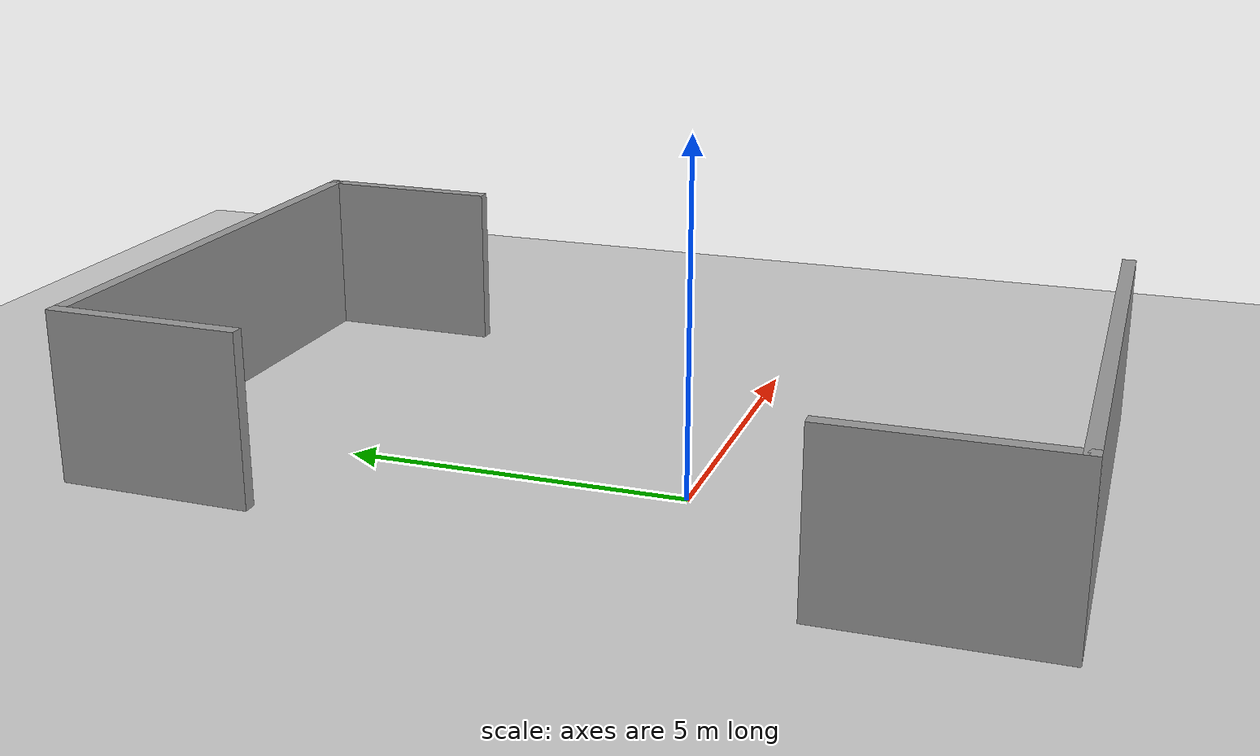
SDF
<sdf version="1.4">
 <world name="default">
  <light name="sun" type="directional">
   <pose>0 0 10 0 -0 0</pose>
   <diffuse>0.8 0.8 0.8 1</diffuse>
   <specular>0.2 0.2 0.2 1</specular>
   <attenuation>
    <range>1000</range>
    <constant>0.9</constant>
    <linear>0.01</linear>
    <quadratic>0.001</quadratic>
   </attenuation>
   <direction>-0.5 0.1 -0.9</direction>
  </light>
  <model name="ground_plane">
   <static>1</static>
   <link name="link">
    <collision name="collision">
     <geometry><plane><normal>0 0 1</normal><size>100 100</size></plane></geometry>
     <surface><friction><ode><mu>100</mu><mu2>50</mu2></ode></friction></surface>
    </collision>
    <visual name="visual">
     <cast_shadows>0</cast_shadows>
     <geometry><plane><normal>0 0 1</normal><size>100 100</size></plane></geometry>
     <material>
      <script><uri>file://media/materials/scripts/gazebo.material</uri><name>Gazebo/Grey</name></script>
     </material>
    </visual>
    <velocity_decay><linear>0</linear><angular>0</angular></velocity_decay>
   </link>
  </model>
  <physics type="ode">
   <max_step_size>0.01</max_step_size>
   <real_time_factor>1</real_time_factor>
   <real_time_update_rate>100</real_time_update_rate>
   <gravity>0 0 -9.8</gravity>
  </physics>
  <scene><ambient>0.4 0.4 0.4 1</ambient><background>0.7 0.7 0.7 1</background><shadows>1</shadows></scene>
  <model name="wall2">
   <link name="Wall_0">
    <collision name="Wall_0_Collision">
     <geometry><box><size>3.19 0.2 2.5</size></box></geometry>
     <pose>0 0 1.25 0 -0 0</pose>
    </collision>
    <visual name="Wall_0_Visual">
     <pose>0 0 1.25 0 -0 0</pose>
     <geometry><box><size>3.19 0.2 2.5</size></box></geometry>
     <material>
      <script><uri>file://media/materials/scripts/gazebo.material</uri><name>Gazebo/Grey</name></script>
     </material>
    </visual>
    <velocity_decay><linear>0</linear><angular>0</angular></velocity_decay>
    <pose>-4.84 -1.765 0 0 0 -1.5708</pose>
   </link>
   <link name="Wall_1">
    <collision name="Wall_1_Collision">
     <geometry><box><size>7.89 0.2 2.5</size></box></geometry>
     <pose>0 0 1.25 0 -0 0</pose>
    </collision>
    <visual name="Wall_1_Visual">
     <pose>0 0 1.25 0 -0 0</pose>
     <geometry><box><size>7.89 0.2 2.5</size></box></geometry>
     <material>
      <script><uri>file://media/materials/scripts/gazebo.material</uri><name>Gazebo/Grey</name></script>
     </material>
    </visual>
    <velocity_decay><linear>0</linear><angular>0</angular></velocity_decay>
    <pose>-0.995 -3.26 0 0 -0 0</pose>
   </link>
   <static>1</static>
   <pose>2 -2 0 0 -0 0.003185</pose>
  </model>
  <model name="wall3">
   <link name="Wall_3">
    <collision name="Wall_3_Collision">
     <geometry><box><size>2.9 0.2 2.5</size></box></geometry>
     <pose>0 0 1.25 0 -0 0</pose>
    </collision>
    <visual name="Wall_3_Visual">
     <pose>0 0 1.25 0 -0 0</pose>
     <geometry><box><size>2.9 0.2 2.5</size></box></geometry>
     <material>
      <script><uri>file://media/materials/scripts/gazebo.material</uri><name>Gazebo/Grey</name></script>
     </material>
    </visual>
    <velocity_decay><linear>0</linear><angular>0</angular></velocity_decay>
    <pose>-4.58 -1.81 0 0 0 -1.5708</pose>
   </link>
   <link name="Wall_4">
    <collision name="Wall_4_Collision">
     <geometry><box><size>7.93 0.2 2.5</size></box></geometry>
     <pose>0 0 1.25 0 -0 0</pose>
    </collision>
    <visual name="Wall_4_Visual">
     <pose>0 0 1.25 0 -0 0</pose>
     <geometry><box><size>7.93 0.2 2.5</size></box></geometry>
     <material>
      <script><uri>file://media/materials/scripts/gazebo.material</uri><name>Gazebo/Grey</name></script>
     </material>
    </visual>
    <velocity_decay><linear>0</linear><angular>0</angular></velocity_decay>
    <pose>-0.715 -3.16 0 0 -0 0</pose>
   </link>
   <link name="Wall_5">
    <collision name="Wall_5_Collision">
     <geometry><box><size>2.88 0.2 2.5</size></box></geometry>
     <pose>0 0 1.25 0 -0 0</pose>
    </collision>
    <visual name="Wall_5_Visual">
     <pose>0 0 1.25 0 -0 0</pose>
     <geometry><box><size>2.88 0.2 2.5</size></box></geometry>
     <material>
      <script><uri>file://media/materials/scripts/gazebo.material</uri><name>Gazebo/Grey</name></script>
     </material>
    </visual>
    <velocity_decay><linear>0</linear><angular>0</angular></velocity_decay>
    <pose>3.15 -1.82 0 0 -0 1.5708</pose>
   </link>
   <static>1</static>
   <pose>1 5 0 0 -0 3.12318</pose>
  </model>
 </world>
</sdf>
